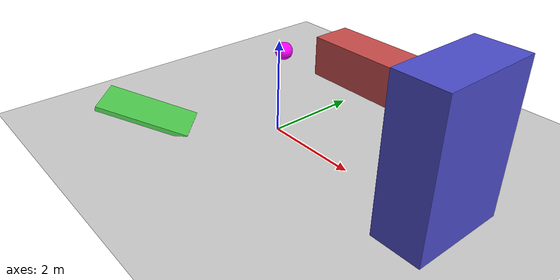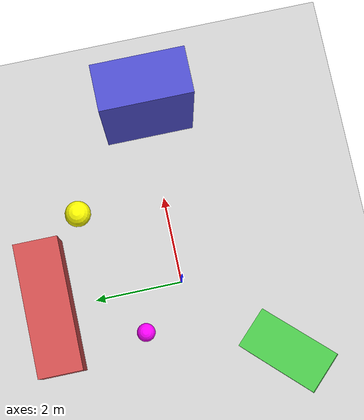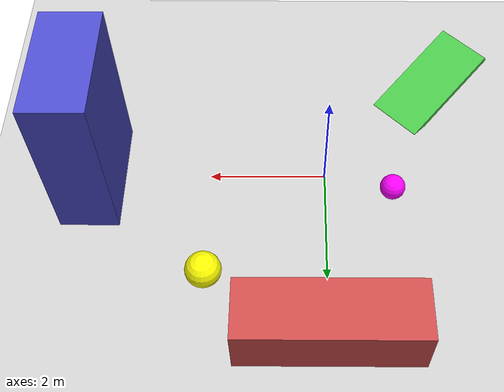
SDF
<?xml version="1.0" ?>
<sdf version="1.6">
  <world name="lidar_3d_test">
    <include>
      <uri>https://fuel.gazebosim.org/1.0/OpenRobotics/models/Sun</uri>
    </include>

    <include>
      <uri>https://fuel.gazebosim.org/1.0/OpenRobotics/models/Ground Plane</uri>
    </include>

    <!-- Multi-level structures for 3D testing -->
    <model name="tall_building">
      <pose>4 0 1.5 0 0 0</pose>
      <link name="link">
        <collision name="collision">
          <geometry>
            <box>
              <size>1 2 3</size>
            </box>
          </geometry>
        </collision>
        <visual name="visual">
          <geometry>
            <box>
              <size>1 2 3</size>
            </box>
          </geometry>
          <material>
            <ambient>0.3 0.3 0.8 1</ambient>
            <diffuse>0.3 0.3 0.8 1</diffuse>
          </material>
        </visual>
      </link>
    </model>

    <!-- Elevated platform -->
    <model name="platform">
      <pose>0 3 0.5 0 0 0</pose>
      <link name="link">
        <collision name="collision">
          <geometry>
            <box>
              <size>3 1 1</size>
            </box>
          </geometry>
        </collision>
        <visual name="visual">
          <geometry>
            <box>
              <size>3 1 1</size>
            </box>
          </geometry>
          <material>
            <ambient>0.8 0.3 0.3 1</ambient>
            <diffuse>0.8 0.3 0.3 1</diffuse>
          </material>
        </visual>
      </link>
    </model>

    <!-- Ramp for height variation -->
    <model name="ramp">
      <pose>-2 -2 0.25 0 0.3 0.7854</pose>
      <link name="link">
        <collision name="collision">
          <geometry>
            <box>
              <size>2 1 0.1</size>
            </box>
          </geometry>
        </collision>
        <visual name="visual">
          <geometry>
            <box>
              <size>2 1 0.1</size>
            </box>
          </geometry>
          <material>
            <ambient>0.3 0.8 0.3 1</ambient>
            <diffuse>0.3 0.8 0.3 1</diffuse>
          </material>
        </visual>
      </link>
    </model>

    <!-- Sphere obstacles at different heights -->
    <model name="sphere_low">
      <pose>2 2 0.3 0 0 0</pose>
      <link name="link">
        <collision name="collision">
          <geometry>
            <sphere>
              <radius>0.3</radius>
            </sphere>
          </geometry>
        </collision>
        <visual name="visual">
          <geometry>
            <sphere>
              <radius>0.3</radius>
            </sphere>
          </geometry>
          <material>
            <ambient>1 1 0 1</ambient>
            <diffuse>1 1 0 1</diffuse>
          </material>
        </visual>
      </link>
    </model>

    <model name="sphere_high">
      <pose>-1 1 1.2 0 0 0</pose>
      <link name="link">
        <collision name="collision">
          <geometry>
            <sphere>
              <radius>0.2</radius>
            </sphere>
          </geometry>
        </collision>
        <visual name="visual">
          <geometry>
            <sphere>
              <radius>0.2</radius>
            </sphere>
          </geometry>
          <material>
            <ambient>1 0 1 1</ambient>
            <diffuse>1 0 1 1</diffuse>
          </material>
        </visual>
      </link>
    </model>
  </world>
</sdf>
